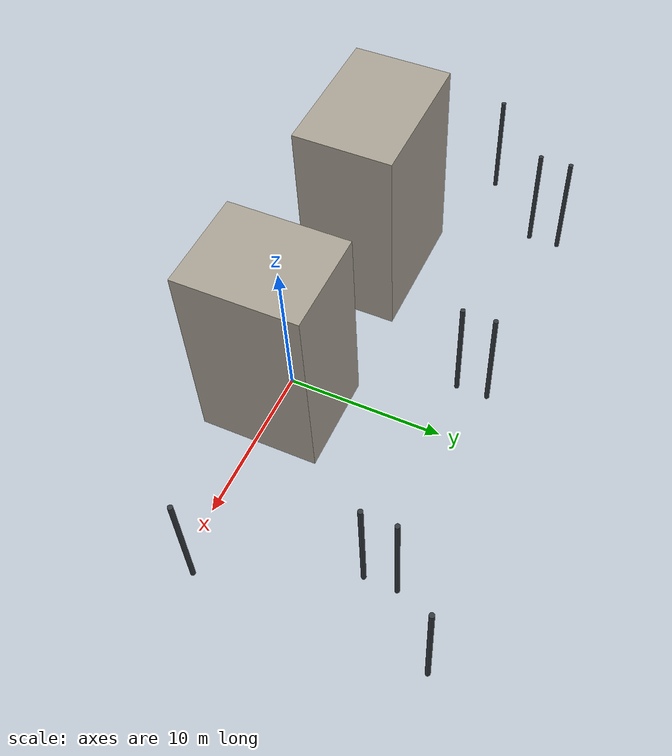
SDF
<sdf version="1.5">
 <world name="robocup_training_city_full_s7">
  <model name="building_1169">
   <static>true</static>
   <pose>1.740974 0.241653 0 0 0 0</pose>
   <link name="link">
    <pose>0 0 6.566435 0 0 0</pose>
    <collision name="collision">
     <geometry><box><size>6.207201 7.51585 13.132871</size></box></geometry>
     <surface><friction><ode><mu>1</mu><mu2>1</mu2></ode></friction></surface>
    </collision>
    <visual name="visual">
     <geometry><box><size>6.207201 7.51585 13.132871</size></box></geometry>
     <material>
      <ambient>0.297 0.2835 0.261 1</ambient>
      <diffuse>0.66 0.63 0.58 1</diffuse>
      <specular>0.04 0.04 0.04 1</specular>
      <emissive>0 0 0 1</emissive>
     </material>
    </visual>
    <inertial>
     <mass>1</mass>
     <inertia>
      <ixx>19.080025</ixx>
      <ixy>0</ixy>
      <ixz>0</ixz>
      <iyy>17.58347</iyy>
      <iyz>0</iyz>
      <izz>7.918112</izz>
     </inertia>
    </inertial>
   </link>
  </model>
  <model name="building_1171">
   <static>true</static>
   <pose>-11.314388 0.743348 0 0 0 0</pose>
   <link name="link">
    <pose>0 0 6.885413 0 0 0</pose>
    <collision name="collision">
     <geometry><box><size>8.821256 6.237443 13.770826</size></box></geometry>
     <surface><friction><ode><mu>1</mu><mu2>1</mu2></ode></friction></surface>
    </collision>
    <visual name="visual">
     <geometry><box><size>8.821256 6.237443 13.770826</size></box></geometry>
     <material>
      <ambient>0.297 0.2835 0.261 1</ambient>
      <diffuse>0.66 0.63 0.58 1</diffuse>
      <specular>0.04 0.04 0.04 1</specular>
      <emissive>0 0 0 1</emissive>
     </material>
    </visual>
    <inertial>
     <mass>1</mass>
     <inertia>
      <ixx>19.045112</ixx>
      <ixy>0</ixy>
      <ixz>0</ixz>
      <iyy>22.287517</iyy>
      <iyz>0</iyz>
      <izz>9.726688</izz>
     </inertia>
    </inertial>
   </link>
  </model>
  <model name="lamp_post_2536">
   <static>true</static>
   <pose>-21.8 5.644369 0 0 0 0</pose>
   <link name="link">
    <pose>0 0 3.75 0 0 0</pose>
    <collision name="collision">
     <geometry><cylinder><radius>0.15</radius><length>7.5</length></cylinder></geometry>
     <surface><friction><ode><mu>1</mu><mu2>1</mu2></ode></friction></surface>
    </collision>
    <visual name="visual">
     <geometry><cylinder><radius>0.15</radius><length>7.5</length></cylinder></geometry>
     <material>
      <ambient>0.09 0.099 0.108 1</ambient>
      <diffuse>0.2 0.22 0.24 1</diffuse>
      <specular>0.04 0.04 0.04 1</specular>
      <emissive>0 0 0 1</emissive>
     </material>
    </visual>
    <inertial>
     <mass>1</mass>
     <inertia>
      <ixx>4.693125</ixx>
      <ixy>0</ixy>
      <ixz>0</ixz>
      <iyy>4.693125</iyy>
      <iyz>0</iyz>
      <izz>0.01125</izz>
     </inertia>
    </inertial>
   </link>
  </model>
  <model name="lamp_post_2547">
   <static>true</static>
   <pose>13.8 0.937086 0 0 0 0</pose>
   <link name="link">
    <pose>0 0 3.75 0 0 0</pose>
    <collision name="collision">
     <geometry><cylinder><radius>0.15</radius><length>7.5</length></cylinder></geometry>
     <surface><friction><ode><mu>1</mu><mu2>1</mu2></ode></friction></surface>
    </collision>
    <visual name="visual">
     <geometry><cylinder><radius>0.15</radius><length>7.5</length></cylinder></geometry>
     <material>
      <ambient>0.09 0.099 0.108 1</ambient>
      <diffuse>0.2 0.22 0.24 1</diffuse>
      <specular>0.04 0.04 0.04 1</specular>
      <emissive>0 0 0 1</emissive>
     </material>
    </visual>
    <inertial>
     <mass>1</mass>
     <inertia>
      <ixx>4.693125</ixx>
      <ixy>0</ixy>
      <ixz>0</ixz>
      <iyy>4.693125</iyy>
      <iyz>0</iyz>
      <izz>0.01125</izz>
     </inertia>
    </inertial>
   </link>
  </model>
  <model name="lamp_post_2549">
   <static>true</static>
   <pose>13.8 14.937086 0 0 0 0</pose>
   <link name="link">
    <pose>0 0 3.75 0 0 0</pose>
    <collision name="collision">
     <geometry><cylinder><radius>0.15</radius><length>7.5</length></cylinder></geometry>
     <surface><friction><ode><mu>1</mu><mu2>1</mu2></ode></friction></surface>
    </collision>
    <visual name="visual">
     <geometry><cylinder><radius>0.15</radius><length>7.5</length></cylinder></geometry>
     <material>
      <ambient>0.09 0.099 0.108 1</ambient>
      <diffuse>0.2 0.22 0.24 1</diffuse>
      <specular>0.04 0.04 0.04 1</specular>
      <emissive>0 0 0 1</emissive>
     </material>
    </visual>
    <inertial>
     <mass>1</mass>
     <inertia>
      <ixx>4.693125</ixx>
      <ixy>0</ixy>
      <ixz>0</ixz>
      <iyy>4.693125</iyy>
      <iyz>0</iyz>
      <izz>0.01125</izz>
     </inertia>
    </inertial>
   </link>
  </model>
  <model name="lamp_post_2645">
   <static>true</static>
   <pose>-17.750336 9.666667 0 0 0 0</pose>
   <link name="link">
    <pose>0 0 3.75 0 0 0</pose>
    <collision name="collision">
     <geometry><cylinder><radius>0.15</radius><length>7.5</length></cylinder></geometry>
     <surface><friction><ode><mu>1</mu><mu2>1</mu2></ode></friction></surface>
    </collision>
    <visual name="visual">
     <geometry><cylinder><radius>0.15</radius><length>7.5</length></cylinder></geometry>
     <material>
      <ambient>0.09 0.099 0.108 1</ambient>
      <diffuse>0.2 0.22 0.24 1</diffuse>
      <specular>0.04 0.04 0.04 1</specular>
      <emissive>0 0 0 1</emissive>
     </material>
    </visual>
    <inertial>
     <mass>1</mass>
     <inertia>
      <ixx>4.693125</ixx>
      <ixy>0</ixy>
      <ixz>0</ixz>
      <iyy>4.693125</iyy>
      <iyz>0</iyz>
      <izz>0.01125</izz>
     </inertia>
    </inertial>
   </link>
  </model>
  <model name="lamp_post_2646">
   <static>true</static>
   <pose>-17.750336 11.666667 0 0 0 0</pose>
   <link name="link">
    <pose>0 0 3.75 0 0 0</pose>
    <collision name="collision">
     <geometry><cylinder><radius>0.15</radius><length>7.5</length></cylinder></geometry>
     <surface><friction><ode><mu>1</mu><mu2>1</mu2></ode></friction></surface>
    </collision>
    <visual name="visual">
     <geometry><cylinder><radius>0.15</radius><length>7.5</length></cylinder></geometry>
     <material>
      <ambient>0.09 0.099 0.108 1</ambient>
      <diffuse>0.2 0.22 0.24 1</diffuse>
      <specular>0.04 0.04 0.04 1</specular>
      <emissive>0 0 0 1</emissive>
     </material>
    </visual>
    <inertial>
     <mass>1</mass>
     <inertia>
      <ixx>4.693125</ixx>
      <ixy>0</ixy>
      <ixz>0</ixz>
      <iyy>4.693125</iyy>
      <iyz>0</iyz>
      <izz>0.01125</izz>
     </inertia>
    </inertial>
   </link>
  </model>
  <model name="lamp_post_2647">
   <static>true</static>
   <pose>-3.750336 9.666667 0 0 0 0</pose>
   <link name="link">
    <pose>0 0 3.75 0 0 0</pose>
    <collision name="collision">
     <geometry><cylinder><radius>0.15</radius><length>7.5</length></cylinder></geometry>
     <surface><friction><ode><mu>1</mu><mu2>1</mu2></ode></friction></surface>
    </collision>
    <visual name="visual">
     <geometry><cylinder><radius>0.15</radius><length>7.5</length></cylinder></geometry>
     <material>
      <ambient>0.09 0.099 0.108 1</ambient>
      <diffuse>0.2 0.22 0.24 1</diffuse>
      <specular>0.04 0.04 0.04 1</specular>
      <emissive>0 0 0 1</emissive>
     </material>
    </visual>
    <inertial>
     <mass>1</mass>
     <inertia>
      <ixx>4.693125</ixx>
      <ixy>0</ixy>
      <ixz>0</ixz>
      <iyy>4.693125</iyy>
      <iyz>0</iyz>
      <izz>0.01125</izz>
     </inertia>
    </inertial>
   </link>
  </model>
  <model name="lamp_post_2648">
   <static>true</static>
   <pose>-3.750336 11.666667 0 0 0 0</pose>
   <link name="link">
    <pose>0 0 3.75 0 0 0</pose>
    <collision name="collision">
     <geometry><cylinder><radius>0.15</radius><length>7.5</length></cylinder></geometry>
     <surface><friction><ode><mu>1</mu><mu2>1</mu2></ode></friction></surface>
    </collision>
    <visual name="visual">
     <geometry><cylinder><radius>0.15</radius><length>7.5</length></cylinder></geometry>
     <material>
      <ambient>0.09 0.099 0.108 1</ambient>
      <diffuse>0.2 0.22 0.24 1</diffuse>
      <specular>0.04 0.04 0.04 1</specular>
      <emissive>0 0 0 1</emissive>
     </material>
    </visual>
    <inertial>
     <mass>1</mass>
     <inertia>
      <ixx>4.693125</ixx>
      <ixy>0</ixy>
      <ixz>0</ixz>
      <iyy>4.693125</iyy>
      <iyz>0</iyz>
      <izz>0.01125</izz>
     </inertia>
    </inertial>
   </link>
  </model>
  <model name="lamp_post_2649">
   <static>true</static>
   <pose>10.249664 9.666667 0 0 0 0</pose>
   <link name="link">
    <pose>0 0 3.75 0 0 0</pose>
    <collision name="collision">
     <geometry><cylinder><radius>0.15</radius><length>7.5</length></cylinder></geometry>
     <surface><friction><ode><mu>1</mu><mu2>1</mu2></ode></friction></surface>
    </collision>
    <visual name="visual">
     <geometry><cylinder><radius>0.15</radius><length>7.5</length></cylinder></geometry>
     <material>
      <ambient>0.09 0.099 0.108 1</ambient>
      <diffuse>0.2 0.22 0.24 1</diffuse>
      <specular>0.04 0.04 0.04 1</specular>
      <emissive>0 0 0 1</emissive>
     </material>
    </visual>
    <inertial>
     <mass>1</mass>
     <inertia>
      <ixx>4.693125</ixx>
      <ixy>0</ixy>
      <ixz>0</ixz>
      <iyy>4.693125</iyy>
      <iyz>0</iyz>
      <izz>0.01125</izz>
     </inertia>
    </inertial>
   </link>
  </model>
  <model name="lamp_post_2650">
   <static>true</static>
   <pose>10.249664 11.666667 0 0 0 0</pose>
   <link name="link">
    <pose>0 0 3.75 0 0 0</pose>
    <collision name="collision">
     <geometry><cylinder><radius>0.15</radius><length>7.5</length></cylinder></geometry>
     <surface><friction><ode><mu>1</mu><mu2>1</mu2></ode></friction></surface>
    </collision>
    <visual name="visual">
     <geometry><cylinder><radius>0.15</radius><length>7.5</length></cylinder></geometry>
     <material>
      <ambient>0.09 0.099 0.108 1</ambient>
      <diffuse>0.2 0.22 0.24 1</diffuse>
      <specular>0.04 0.04 0.04 1</specular>
      <emissive>0 0 0 1</emissive>
     </material>
    </visual>
    <inertial>
     <mass>1</mass>
     <inertia>
      <ixx>4.693125</ixx>
      <ixy>0</ixy>
      <ixz>0</ixz>
      <iyy>4.693125</iyy>
      <iyz>0</iyz>
      <izz>0.01125</izz>
     </inertia>
    </inertial>
   </link>
  </model>
 </world>
</sdf>
